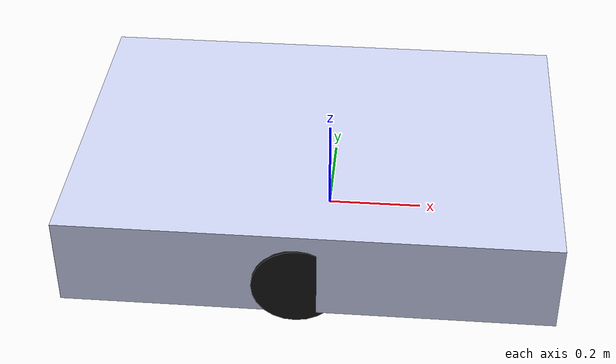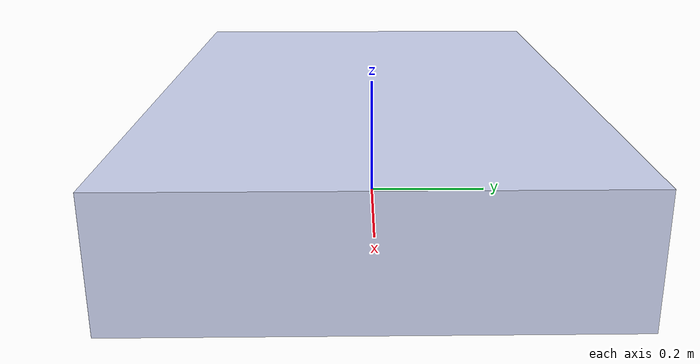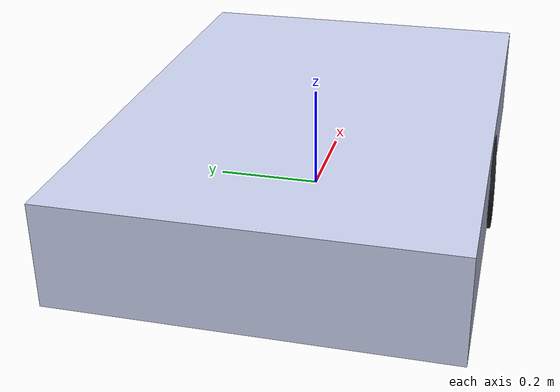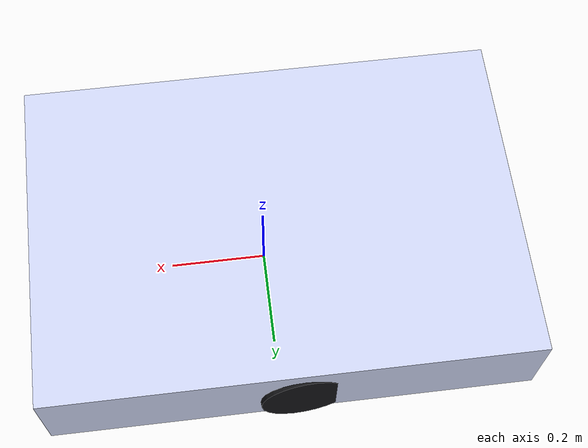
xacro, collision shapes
<?xml version="1.0"?>
<robot name="ecom_mobile_robot" xmlns:xacro="http://www.ros.org/wiki/xacro">

  <material name="ecom_body">
    <color rgba="0.79216 0.81961 0.93333 1"/>
  </material>
  <material name="ecom_wheel">
    <color rgba="0.08 0.08 0.09 1"/>
  </material>

  <link name="base_link">
    <visual name="ecom_chassis">
      <origin xyz="0 0 0" rpy="0 0 0"/>
      <geometry>
        <mesh filename="package://ecom_mobile_robot_description/meshes/base_link.STL"/>
      </geometry>
      <material name="ecom_body"/>
    </visual>

    <!-- Four passive corner wheels are visuals on base_link. This preserves
         the old TF tree instead of introducing exported CAD frame names. -->
    <visual name="front_right_wheel">
      <origin xyz="0.177 -0.27738 0.0121" rpy="0.00061433 0.019368 0.070226"/>
      <geometry>
        <mesh filename="package://ecom_mobile_robot_description/meshes/FR_wheel_link.STL"/>
      </geometry>
      <material name="ecom_wheel"/>
    </visual>
    <visual name="front_left_wheel">
      <origin xyz="0.217 0.27102 0.0121" rpy="0 0 0.070214"/>
      <geometry>
        <mesh filename="package://ecom_mobile_robot_description/meshes/FL_wheel_link.STL"/>
      </geometry>
      <material name="ecom_wheel"/>
    </visual>
    <visual name="back_right_wheel">
      <origin xyz="-0.303 -0.27738 0.0121" rpy="0.00061433 0.019368 0.070226"/>
      <geometry>
        <mesh filename="package://ecom_mobile_robot_description/meshes/BR_wheel_link.STL"/>
      </geometry>
      <material name="ecom_wheel"/>
    </visual>
    <visual name="back_left_wheel">
      <origin xyz="-0.263 0.27088 0.0121" rpy="0.00061433 0.019368 0.070226"/>
      <geometry>
        <mesh filename="package://ecom_mobile_robot_description/meshes/BL_wheel_link.STL"/>
      </geometry>
      <material name="ecom_wheel"/>
    </visual>

    <!-- Stage simulates two diagonal-opposite 270-degree scanners and merges
         them into one 360-degree /scan in the unchanged front laser frame. -->
    <visual name="front_lidar_housing">
      <origin xyz="0.32487 0.24906 0.218" rpy="0 0 0"/>
      <geometry>
        <mesh filename="package://ecom_mobile_robot_description/meshes/lidar_front_link.STL"/>
      </geometry>
      <material name="ecom_body"/>
    </visual>
    <visual name="back_lidar_housing">
      <origin xyz="-0.41524 -0.25105 0.218" rpy="0 0 0"/>
      <geometry>
        <mesh filename="package://ecom_mobile_robot_description/meshes/lidar_back_link.STL"/>
      </geometry>
      <material name="ecom_body"/>
    </visual>

    <collision name="ecom_body_collision">
      <origin xyz="-0.0230 -0.0032 0.09235" rpy="0 0 0"/>
      <geometry>
        <box size="1.0000 0.7000 0.1923"/>
      </geometry>
    </collision>
  </link>

  <link name="imu_link"/>
  <joint name="imu_joint" type="fixed">
    <origin xyz="0 0 0.18" rpy="0 0 0"/>
    <parent link="base_link"/>
    <child link="imu_link"/>
  </joint>

  <link name="camera_mount_link"/>
  <joint name="camera_joint" type="fixed">
    <origin xyz="0.34 0 0.08" rpy="0 -0.13 0"/>
    <parent link="base_link"/>
    <child link="camera_mount_link"/>
  </joint>
  <link name="camera_optical_depth_link"/>
  <joint name="camera_mount_joint" type="fixed">
    <origin xyz="0.016 0 0.009" rpy="0 0 3.14"/>
    <parent link="camera_mount_link"/>
    <child link="camera_optical_depth_link"/>
  </joint>

  <link name="left_wheel">
    <inertial>
      <origin xyz="-0.0014757 -0.020983 -0.000015695" rpy="0 0 0"/>
      <mass value="3.5"/>
      <inertia
        ixx="0.0021514" ixy="0.00013184" ixz="0.00000010007"
        iyy="0.0040168" iyz="0.0000013971" izz="0.0021423"/>
    </inertial>
    <visual>
      <geometry>
        <mesh filename="package://ecom_mobile_robot_description/meshes/ML_wheel_link.STL"/>
      </geometry>
      <material name="ecom_wheel"/>
    </visual>
    <collision>
      <origin xyz="0 0 0" rpy="1.57079632679 0 0"/>
      <geometry>
        <cylinder radius="0.09" length="0.057"/>
      </geometry>
    </collision>
  </link>
  <joint name="left_wheel_hinge" type="fixed">
    <origin xyz="-0.043001 0.32282 0.065" rpy="0.00061433 0.019368 0.070226"/>
    <parent link="base_link"/>
    <child link="left_wheel"/>
  </joint>

  <link name="right_wheel">
    <inertial>
      <origin xyz="0.0014757 0.020983 0.000015695" rpy="0 0 0"/>
      <mass value="3.5"/>
      <inertia
        ixx="0.0021514" ixy="0.00013184" ixz="0.000000092888"
        iyy="0.0040168" iyz="0.0000014025" izz="0.0021423"/>
    </inertial>
    <visual>
      <geometry>
        <mesh filename="package://ecom_mobile_robot_description/meshes/MR_wheel_link.STL"/>
      </geometry>
      <material name="ecom_wheel"/>
    </visual>
    <collision>
      <origin xyz="0 0 0" rpy="1.57079632679 0 0"/>
      <geometry>
        <cylinder radius="0.09" length="0.057"/>
      </geometry>
    </collision>
  </link>
  <joint name="right_wheel_hinge" type="fixed">
    <origin xyz="-0.043001 -0.32758 0.065" rpy="0.00061433 0.019368 0.070226"/>
    <parent link="base_link"/>
    <child link="right_wheel"/>
  </joint>

  <!-- Names retained for consumers that inspect the old transmission
       contract. Stage itself is the hardware backend and consumes /cmd_vel. -->
  <transmission name="tran1">
    <type>transmission_interface/SimpleTransmission</type>
    <joint name="left_wheel_hinge">
      <hardwareInterface>VelocityJointInterface</hardwareInterface>
    </joint>
    <actuator name="left_motor">
      <hardwareInterface>VelocityJointInterface</hardwareInterface>
      <mechanicalReduction>1</mechanicalReduction>
    </actuator>
  </transmission>
  <transmission name="tran2">
    <type>transmission_interface/SimpleTransmission</type>
    <joint name="right_wheel_hinge">
      <hardwareInterface>VelocityJointInterface</hardwareInterface>
    </joint>
    <actuator name="right_motor">
      <hardwareInterface>VelocityJointInterface</hardwareInterface>
      <mechanicalReduction>1</mechanicalReduction>
    </actuator>
  </transmission>
</robot>
